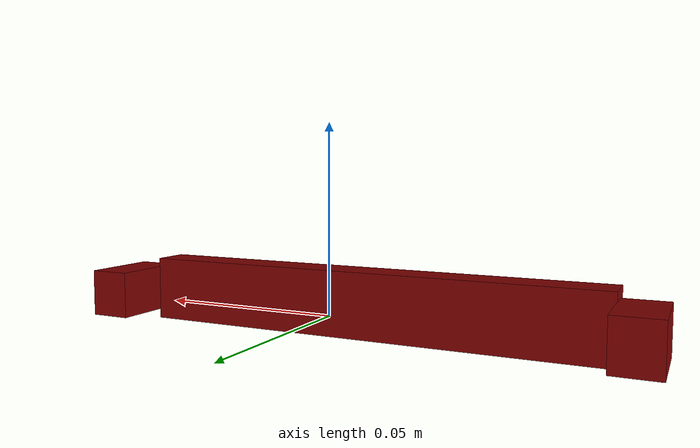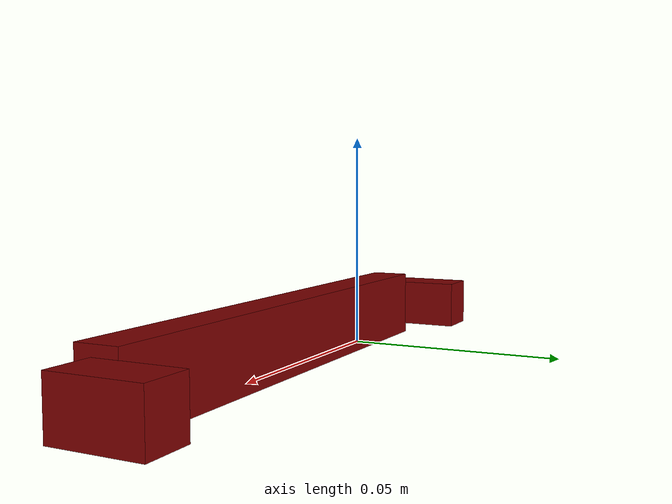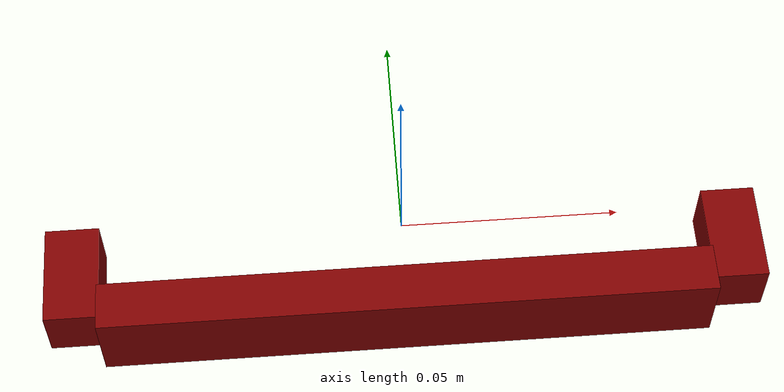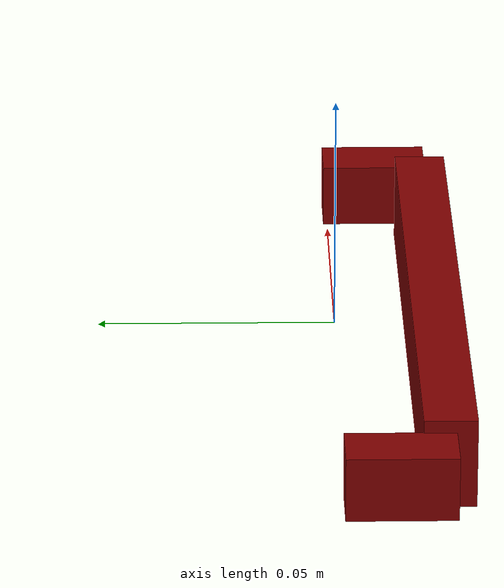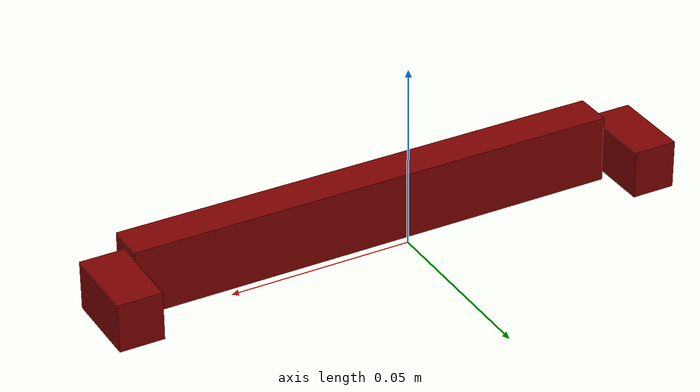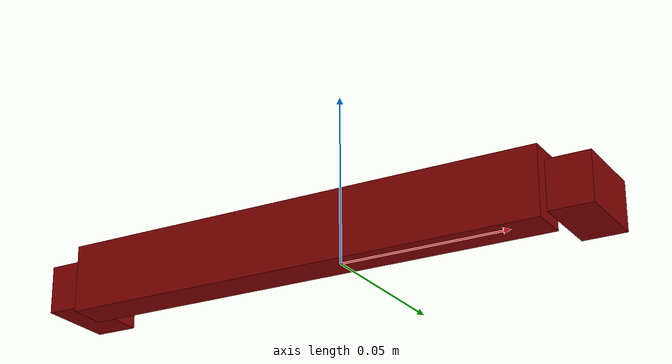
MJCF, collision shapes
<mujoco model="flat_handle">
  <compiler angle="radian"/>
  <asset>
    <mesh file="visuals/CabinetHandle002.obj" name="mesh"/>
    <texture file="visuals/T_CabinetHandle002_BC001.png" name="tex" type="2d"/>
    <material name="mat" rgba="1 1 1 1" texture="tex"/>
  </asset>
  <default>
    <default class="visual">
      <geom conaffinity="0" contype="0" group="1" type="mesh"/>
    </default>
    <default class="collision">
      <geom group="0" rgba="0.5 0 0 0.5"/>
    </default>
    <default class="region">
      <geom group="1" conaffinity="0" contype="0" rgba="0 1 0 0"/>
    </default>
  </default>
  <worldbody>
    <body>
      <body name="object">
        <geom mesh="mesh" type="mesh" density="0" friction="0.95 0.3 0.1" class="visual" material="mat" name="handle"/>
        <geom class="collision" density="10" type="box" pos="0.0748768299818039 -0.011000003665685654 0.0" size="0.006083001382648945 0.011317244730889797 0.00678551709279418" quat="1.0 0.0 0.0 0.0" name="handle_connector_top"/>
        <geom class="collision" density="10" type="box" pos="-0.07480158656835556 -0.011000003665685654 0.0" size="0.006083001382648945 0.011317244730889797 0.00678551709279418" quat="1.0 0.0 0.0 0.0" name="handle_connector_bottom"/>
        <geom class="collision" density="10" type="box" pos="-3.0074268579483032e-05 -0.021065378561615944 -0.00010767466301331297" size="0.005450711119920015 0.06891729682683945 0.009483992122113705" quat="0.7071067690849304 0.0 0.0 0.7071067690849304"/>
        <geom class="region" name="reg_bbox" density="0" type="box" pos="0.0 -0.013341 1.4999999999997654e-06" size="0.080952 0.013494 0.0091325"/>
      </body>
    </body>
  </worldbody>
  <actuator/>
</mujoco>
